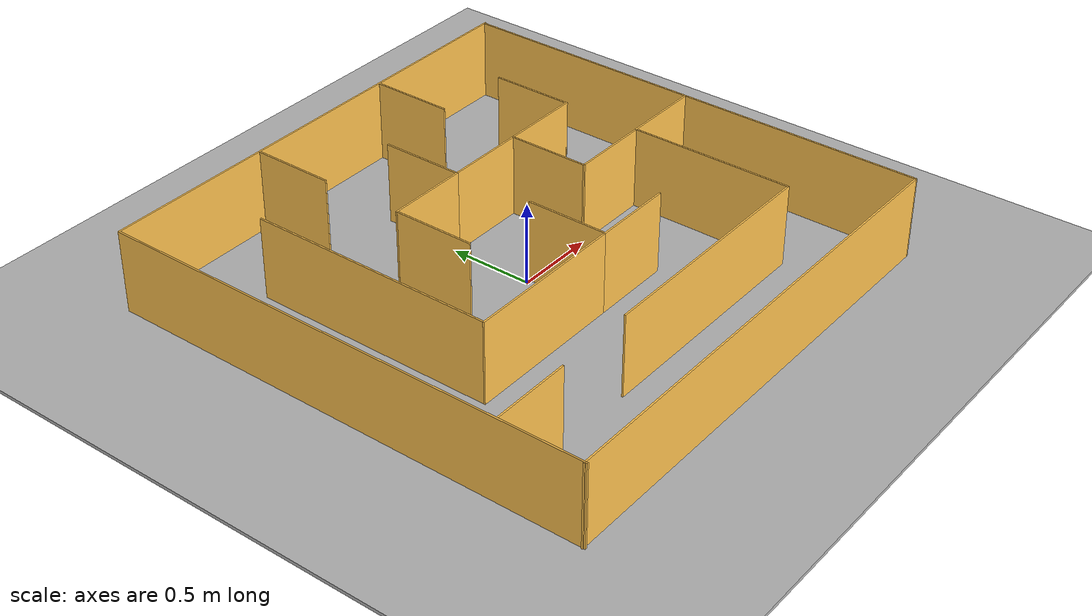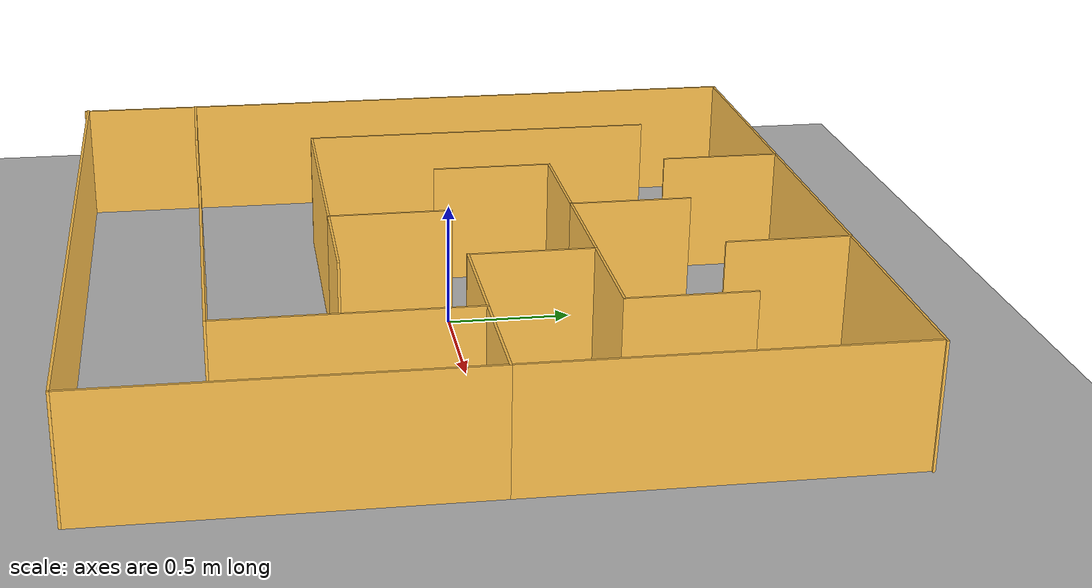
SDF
<?xml version="1.0"?>
<sdf version="1.8">
  <world name="maze_world">
    <physics type="ode">
      <real_time_update_rate>1000.0</real_time_update_rate>
      <max_step_size>0.001</max_step_size>
      <real_time_factor>1</real_time_factor>
      <ode>
        <solver>
          <type>quick</type>
          <iters>150</iters>
          <precon_iters>0</precon_iters>
          <sor>1.4</sor>
          <use_dynamic_moi_rescaling>1</use_dynamic_moi_rescaling>
        </solver>
        <constraints>
          <cfm>0.0</cfm>
          <erp>0.2</erp>
          <contact_surface_layer>0.001</contact_surface_layer>
          <contact_max_correcting_vel>0.5</contact_max_correcting_vel>
        </constraints>
      </ode>
    </physics>
    <plugin
      filename="gz-sim-physics-system"
      name="gz::sim::systems::Physics">
    </plugin>
    <plugin
      filename="gz-sim-user-commands-system"
      name="gz::sim::systems::UserCommands">
    </plugin>
    <plugin
      filename="gz-sim-scene-broadcaster-system"
      name="gz::sim::systems::SceneBroadcaster">
    </plugin>
    <plugin
      filename="gz-sim-sensors-system"
      name="gz::sim::systems::Sensors">
      <render_engine>ogre2</render_engine>
    </plugin>
    <plugin
      filename="gz-sim-imu-system"
      name="gz::sim::systems::Imu">
    </plugin>

    <model name="ground">
      <static>true</static>
      <pose>0 0 -0.01 0 0 0</pose>
      <link name="ground_link">
       <collision name="ground_collision">
        <geometry><box><size>50 50 0.02</size></box></geometry>
       </collision>
       <visual name="ground_visual">
        <geometry><box><size>50 50 0.02</size></box></geometry>
       </visual>
      </link>
    </model>

    <light name="sun" type="directional">
      <pose>0 0 10 0 0 0</pose>
      <direction>-0.5 0.5 -1</direction>
    </light>

    <include>
      <uri>model://maze_world</uri>
      <name>maze</name>
      <pose>0 0 0 0 0 0</pose>
      <static>true</static>
    </include>
  </world>
</sdf>

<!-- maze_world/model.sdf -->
<sdf version='1.7'>
  <model name='maze_world'>
    <pose>-0.030549 0.041679 0 0 -0 0</pose>
    <link name='Wall_0'>
      <collision name='Wall_0_Collision'>
        <geometry>
          <box>
            <size>0.5 0.01 0.5</size>
          </box>
        </geometry>
        <pose>0 0 0.25 0 -0 0</pose>
      </collision>
      <visual name='Wall_0_Visual'>
        <pose>0 0 0.25 0 -0 0</pose>
        <geometry>
          <box>
            <size>0.5 0.01 0.5</size>
          </box>
        </geometry>
        <material>
          <script>
            <uri>file://media/materials/scripts/gazebo.material</uri>
            <name>Gazebo/Grey</name>
          </script>
          <ambient>1 0.764706 0.305882 1</ambient>
        </material>
        <meta>
          <layer>0</layer>
        </meta>
      </visual>
      <pose>1.24555 0.005321 0 0 -0 3.14159</pose>
    </link>
    <link name='Wall_10'>
      <collision name='Wall_10_Collision'>
        <geometry>
          <box>
            <size>0.5 0.01 0.5</size>
          </box>
        </geometry>
        <pose>0 0 0.25 0 -0 0</pose>
      </collision>
      <visual name='Wall_10_Visual'>
        <pose>0 0 0.25 0 -0 0</pose>
        <geometry>
          <box>
            <size>0.5 0.01 0.5</size>
          </box>
        </geometry>
        <material>
          <script>
            <uri>file://media/materials/scripts/gazebo.material</uri>
            <name>Gazebo/Grey</name>
          </script>
          <ambient>1 0.764706 0.305882 1</ambient>
        </material>
        <meta>
          <layer>0</layer>
        </meta>
      </visual>
      <pose>0.755549 0.005321 0 0 -0 3.14159</pose>
    </link>
    <link name='Wall_12'>
      <collision name='Wall_12_Collision'>
        <geometry>
          <box>
            <size>0.5 0.01 0.5</size>
          </box>
        </geometry>
        <pose>0 0 0.25 0 -0 0</pose>
      </collision>
      <visual name='Wall_12_Visual'>
        <pose>0 0 0.25 0 -0 0</pose>
        <geometry>
          <box>
            <size>0.5 0.01 0.5</size>
          </box>
        </geometry>
        <material>
          <script>
            <uri>file://media/materials/scripts/gazebo.material</uri>
            <name>Gazebo/Grey</name>
          </script>
          <ambient>1 0.764706 0.305882 1</ambient>
        </material>
        <meta>
          <layer>0</layer>
        </meta>
      </visual>
      <pose>0.510549 0.250321 0 0 -0 1.5708</pose>
    </link>
    <link name='Wall_14'>
      <collision name='Wall_14_Collision'>
        <geometry>
          <box>
            <size>0.5 0.01 0.5</size>
          </box>
        </geometry>
        <pose>0 0 0.25 0 -0 0</pose>
      </collision>
      <visual name='Wall_14_Visual'>
        <pose>0 0 0.25 0 -0 0</pose>
        <geometry>
          <box>
            <size>0.5 0.01 0.5</size>
          </box>
        </geometry>
        <material>
          <script>
            <uri>file://media/materials/scripts/gazebo.material</uri>
            <name>Gazebo/Grey</name>
          </script>
          <ambient>1 0.764706 0.305882 1</ambient>
        </material>
        <meta>
          <layer>0</layer>
        </meta>
      </visual>
      <pose>0.755549 0.495321 0 0 -0 0</pose>
    </link>
    <link name='Wall_16'>
      <collision name='Wall_16_Collision'>
        <geometry>
          <box>
            <size>0.5 0.01 0.5</size>
          </box>
        </geometry>
        <pose>0 0 0.25 0 -0 0</pose>
      </collision>
      <visual name='Wall_16_Visual'>
        <pose>0 0 0.25 0 -0 0</pose>
        <geometry>
          <box>
            <size>0.5 0.01 0.5</size>
          </box>
        </geometry>
        <material>
          <script>
            <uri>file://media/materials/scripts/gazebo.material</uri>
            <name>Gazebo/Grey</name>
          </script>
          <ambient>1 0.764706 0.305882 1</ambient>
        </material>
        <meta>
          <layer>0</layer>
        </meta>
      </visual>
      <pose>0.265549 0.495321 0 0 -0 3.14159</pose>
    </link>
    <link name='Wall_18'>
      <collision name='Wall_18_Collision'>
        <geometry>
          <box>
            <size>0.5 0.01 0.5</size>
          </box>
        </geometry>
        <pose>0 0 0.25 0 -0 0</pose>
      </collision>
      <visual name='Wall_18_Visual'>
        <pose>0 0 0.25 0 -0 0</pose>
        <geometry>
          <box>
            <size>0.5 0.01 0.5</size>
          </box>
        </geometry>
        <material>
          <script>
            <uri>file://media/materials/scripts/gazebo.material</uri>
            <name>Gazebo/Grey</name>
          </script>
          <ambient>1 0.764706 0.305882 1</ambient>
        </material>
        <meta>
          <layer>0</layer>
        </meta>
      </visual>
      <pose>-0.224451 0.495321 0 0 -0 3.14159</pose>
    </link>
    <link name='Wall_2'>
      <collision name='Wall_2_Collision'>
        <geometry>
          <box>
            <size>1 0.01 0.5</size>
          </box>
        </geometry>
        <pose>0 0 0.25 0 -0 0</pose>
      </collision>
      <visual name='Wall_2_Visual'>
        <pose>0 0 0.25 0 -0 0</pose>
        <geometry>
          <box>
            <size>1 0.01 0.5</size>
          </box>
        </geometry>
        <material>
          <script>
            <uri>file://media/materials/scripts/gazebo.material</uri>
            <name>Gazebo/Grey</name>
          </script>
          <ambient>1 0.764706 0.305882 1</ambient>
        </material>
        <meta>
          <layer>0</layer>
        </meta>
      </visual>
      <pose>1.00055 -0.489679 0 0 -0 -1.5708</pose>
    </link>
    <link name='Wall_20'>
      <collision name='Wall_20_Collision'>
        <geometry>
          <box>
            <size>0.5 0.01 0.5</size>
          </box>
        </geometry>
        <pose>0 0 0.25 0 -0 0</pose>
      </collision>
      <visual name='Wall_20_Visual'>
        <pose>0 0 0.25 0 -0 0</pose>
        <geometry>
          <box>
            <size>0.5 0.01 0.5</size>
          </box>
        </geometry>
        <material>
          <script>
            <uri>file://media/materials/scripts/gazebo.material</uri>
            <name>Gazebo/Grey</name>
          </script>
          <ambient>1 0.764706 0.305882 1</ambient>
        </material>
        <meta>
          <layer>0</layer>
        </meta>
      </visual>
      <pose>-0.469451 0.250321 0 0 -0 -1.5708</pose>
    </link>
    <link name='Wall_22'>
      <collision name='Wall_22_Collision'>
        <geometry>
          <box>
            <size>0.5 0.01 0.5</size>
          </box>
        </geometry>
        <pose>0 0 0.25 0 -0 0</pose>
      </collision>
      <visual name='Wall_22_Visual'>
        <pose>0 0 0.25 0 -0 0</pose>
        <geometry>
          <box>
            <size>0.5 0.01 0.5</size>
          </box>
        </geometry>
        <material>
          <script>
            <uri>file://media/materials/scripts/gazebo.material</uri>
            <name>Gazebo/Grey</name>
          </script>
          <ambient>1 0.764706 0.305882 1</ambient>
        </material>
        <meta>
          <layer>0</layer>
        </meta>
      </visual>
      <pose>0.020549 0.740321 0 0 -0 1.5708</pose>
    </link>
    <link name='Wall_24'>
      <collision name='Wall_24_Collision'>
        <geometry>
          <box>
            <size>0.5 0.01 0.5</size>
          </box>
        </geometry>
        <pose>0 0 0.25 0 -0 0</pose>
      </collision>
      <visual name='Wall_24_Visual'>
        <pose>0 0 0.25 0 -0 0</pose>
        <geometry>
          <box>
            <size>0.5 0.01 0.5</size>
          </box>
        </geometry>
        <material>
          <script>
            <uri>file://media/materials/scripts/gazebo.material</uri>
            <name>Gazebo/Grey</name>
          </script>
          <ambient>1 0.764706 0.305882 1</ambient>
        </material>
        <meta>
          <layer>0</layer>
        </meta>
      </visual>
      <pose>1.00055 0.740321 0 0 -0 1.5708</pose>
    </link>
    <link name='Wall_26'>
      <collision name='Wall_26_Collision'>
        <geometry>
          <box>
            <size>0.5 0.01 0.5</size>
          </box>
        </geometry>
        <pose>0 0 0.25 0 -0 0</pose>
      </collision>
      <visual name='Wall_26_Visual'>
        <pose>0 0 0.25 0 -0 0</pose>
        <geometry>
          <box>
            <size>0.5 0.01 0.5</size>
          </box>
        </geometry>
        <material>
          <script>
            <uri>file://media/materials/scripts/gazebo.material</uri>
            <name>Gazebo/Grey</name>
          </script>
          <ambient>1 0.764706 0.305882 1</ambient>
        </material>
        <meta>
          <layer>0</layer>
        </meta>
      </visual>
      <pose>0.515549 1.24865 0 0 -0 -1.5708</pose>
    </link>
    <link name='Wall_28'>
      <collision name='Wall_28_Collision'>
        <geometry>
          <box>
            <size>0.5 0.01 0.5</size>
          </box>
        </geometry>
        <pose>0 0 0.25 0 -0 0</pose>
      </collision>
      <visual name='Wall_28_Visual'>
        <pose>0 0 0.25 0 -0 0</pose>
        <geometry>
          <box>
            <size>0.5 0.01 0.5</size>
          </box>
        </geometry>
        <material>
          <script>
            <uri>file://media/materials/scripts/gazebo.material</uri>
            <name>Gazebo/Grey</name>
          </script>
          <ambient>1 0.764706 0.305882 1</ambient>
        </material>
        <meta>
          <layer>0</layer>
        </meta>
      </visual>
      <pose>-0.471451 1.2488 0 0 -0 -1.5708</pose>
    </link>
    <link name='Wall_36'>
      <collision name='Wall_36_Collision'>
        <geometry>
          <box>
            <size>1.5 0.01 0.5</size>
          </box>
        </geometry>
        <pose>0 0 0.25 0 -0 0</pose>
      </collision>
      <visual name='Wall_36_Visual'>
        <pose>0 0 0.25 0 -0 0</pose>
        <geometry>
          <box>
            <size>1.5 0.01 0.5</size>
          </box>
        </geometry>
        <material>
          <script>
            <uri>file://media/materials/scripts/gazebo.material</uri>
            <name>Gazebo/Grey</name>
          </script>
          <ambient>1 0.764706 0.305882 1</ambient>
        </material>
        <meta>
          <layer>0</layer>
        </meta>
      </visual>
      <pose>-0.955451 0.261321 0 0 -0 1.5708</pose>
    </link>
    <link name='Wall_38'>
      <collision name='Wall_38_Collision'>
        <geometry>
          <box>
            <size>1 0.01 0.5</size>
          </box>
        </geometry>
        <pose>0 0 0.25 0 -0 0</pose>
      </collision>
      <visual name='Wall_38_Visual'>
        <pose>0 0 0.25 0 -0 0</pose>
        <geometry>
          <box>
            <size>1 0.01 0.5</size>
          </box>
        </geometry>
        <material>
          <script>
            <uri>file://media/materials/scripts/gazebo.material</uri>
            <name>Gazebo/Grey</name>
          </script>
          <ambient>1 0.764706 0.305882 1</ambient>
        </material>
        <meta>
          <layer>0</layer>
        </meta>
      </visual>
      <pose>-0.460451 -0.483679 0 0 -0 0</pose>
    </link>
    <link name='Wall_40'>
      <collision name='Wall_40_Collision'>
        <geometry>
          <box>
            <size>0.5 0.01 0.5</size>
          </box>
        </geometry>
        <pose>0 0 0.25 0 -0 0</pose>
      </collision>
      <visual name='Wall_40_Visual'>
        <pose>0 0 0.25 0 -0 0</pose>
        <geometry>
          <box>
            <size>0.5 0.01 0.5</size>
          </box>
        </geometry>
        <material>
          <script>
            <uri>file://media/materials/scripts/gazebo.material</uri>
            <name>Gazebo/Grey</name>
          </script>
          <ambient>1 0.764706 0.305882 1</ambient>
        </material>
        <meta>
          <layer>0</layer>
        </meta>
      </visual>
      <pose>0.279549 -0.483679 0 0 -0 0</pose>
    </link>
    <link name='Wall_42'>
      <collision name='Wall_42_Collision'>
        <geometry>
          <box>
            <size>0.5 0.01 0.5</size>
          </box>
        </geometry>
        <pose>0 0 0.25 0 -0 0</pose>
      </collision>
      <visual name='Wall_42_Visual'>
        <pose>0 0 0.25 0 -0 0</pose>
        <geometry>
          <box>
            <size>0.5 0.01 0.5</size>
          </box>
        </geometry>
        <material>
          <script>
            <uri>file://media/materials/scripts/gazebo.material</uri>
            <name>Gazebo/Grey</name>
          </script>
          <ambient>1 0.764706 0.305882 1</ambient>
        </material>
        <meta>
          <layer>0</layer>
        </meta>
      </visual>
      <pose>0.034549 -0.238679 0 0 -0 1.5708</pose>
    </link>
    <link name='Wall_44'>
      <collision name='Wall_44_Collision'>
        <geometry>
          <box>
            <size>1.5 0.01 0.5</size>
          </box>
        </geometry>
        <pose>0 0 0.25 0 -0 0</pose>
      </collision>
      <visual name='Wall_44_Visual'>
        <pose>0 0 0.25 0 -0 0</pose>
        <geometry>
          <box>
            <size>1.5 0.01 0.5</size>
          </box>
        </geometry>
        <material>
          <script>
            <uri>file://media/materials/scripts/gazebo.material</uri>
            <name>Gazebo/Grey</name>
          </script>
          <ambient>1 0.764706 0.305882 1</ambient>
        </material>
        <meta>
          <layer>0</layer>
        </meta>
      </visual>
      <pose>1.49055 -0.739679 0 0 -0 -1.5708</pose>
    </link>
    <link name='Wall_46'>
      <collision name='Wall_46_Collision'>
        <geometry>
          <box>
            <size>1.5 0.01 0.5</size>
          </box>
        </geometry>
        <pose>0 0 0.25 0 -0 0</pose>
      </collision>
      <visual name='Wall_46_Visual'>
        <pose>0 0 0.25 0 -0 0</pose>
        <geometry>
          <box>
            <size>1.5 0.01 0.5</size>
          </box>
        </geometry>
        <material>
          <script>
            <uri>file://media/materials/scripts/gazebo.material</uri>
            <name>Gazebo/Grey</name>
          </script>
          <ambient>1 0.764706 0.305882 1</ambient>
        </material>
        <meta>
          <layer>0</layer>
        </meta>
      </visual>
      <pose>1.49055 0.750321 0 0 -0 1.5708</pose>
    </link>
    <link name='Wall_51'>
      <collision name='Wall_51_Collision'>
        <geometry>
          <box>
            <size>3 0.01 0.5</size>
          </box>
        </geometry>
        <pose>0 0 0.25 0 -0 0</pose>
      </collision>
      <visual name='Wall_51_Visual'>
        <pose>0 0 0.25 0 -0 0</pose>
        <geometry>
          <box>
            <size>3 0.01 0.5</size>
          </box>
        </geometry>
        <material>
          <script>
            <uri>file://media/materials/scripts/gazebo.material</uri>
            <name>Gazebo/Grey</name>
          </script>
          <ambient>1 0.764706 0.305882 1</ambient>
        </material>
        <meta>
          <layer>0</layer>
        </meta>
      </visual>
      <pose>0.003593 1.49474 0 0 -0 0</pose>
    </link>
    <link name='Wall_53'>
      <collision name='Wall_53_Collision'>
        <geometry>
          <box>
            <size>3 0.01 0.5</size>
          </box>
        </geometry>
        <pose>0 0 0.25 0 -0 0</pose>
      </collision>
      <visual name='Wall_53_Visual'>
        <pose>0 0 0.25 0 -0 0</pose>
        <geometry>
          <box>
            <size>3 0.01 0.5</size>
          </box>
        </geometry>
        <material>
          <script>
            <uri>file://media/materials/scripts/gazebo.material</uri>
            <name>Gazebo/Grey</name>
          </script>
          <ambient>1 0.764706 0.305882 1</ambient>
        </material>
        <meta>
          <layer>0</layer>
        </meta>
      </visual>
      <pose>-1.4928 -0.000321 0 0 -0 1.5708</pose>
    </link>
    <link name='Wall_57'>
      <collision name='Wall_57_Collision'>
        <geometry>
          <box>
            <size>3 0.01 0.5</size>
          </box>
        </geometry>
        <pose>0 0 0.25 0 -0 0</pose>
      </collision>
      <visual name='Wall_57_Visual'>
        <pose>0 0 0.25 0 -0 0</pose>
        <geometry>
          <box>
            <size>3 0.01 0.5</size>
          </box>
        </geometry>
        <material>
          <script>
            <uri>file://media/materials/scripts/gazebo.material</uri>
            <name>Gazebo/Grey</name>
          </script>
          <ambient>1 0.764706 0.305882 1</ambient>
        </material>
        <meta>
          <layer>0</layer>
        </meta>
      </visual>
      <pose>-0.003593 -1.4846 0 0 -0 0</pose>
    </link>
    <link name='Wall_59'>
      <collision name='Wall_59_Collision'>
        <geometry>
          <box>
            <size>0.5 0.01 0.5</size>
          </box>
        </geometry>
        <pose>0 0 0.25 0 -0 0</pose>
      </collision>
      <visual name='Wall_59_Visual'>
        <pose>0 0 0.25 0 -0 0</pose>
        <geometry>
          <box>
            <size>0.5 0.01 0.5</size>
          </box>
        </geometry>
        <material>
          <script>
            <uri>file://media/materials/scripts/gazebo.material</uri>
            <name>Gazebo/Grey</name>
          </script>
          <ambient>1 0.764706 0.305882 1</ambient>
        </material>
        <meta>
          <layer>0</layer>
        </meta>
      </visual>
      <pose>-1.24682 -0.991679 0 0 -0 0</pose>
    </link>
    <link name='Wall_8'>
      <collision name='Wall_8_Collision'>
        <geometry>
          <box>
            <size>1.5 0.01 0.5</size>
          </box>
        </geometry>
        <pose>0 0 0.25 0 -0 0</pose>
      </collision>
      <visual name='Wall_8_Visual'>
        <pose>0 0 0.25 0 -0 0</pose>
        <geometry>
          <box>
            <size>1.5 0.01 0.5</size>
          </box>
        </geometry>
        <material>
          <script>
            <uri>file://media/materials/scripts/gazebo.material</uri>
            <name>Gazebo/Grey</name>
          </script>
          <ambient>1 0.764706 0.305882 1</ambient>
        </material>
        <meta>
          <layer>0</layer>
        </meta>
      </visual>
      <pose>0.255549 -0.984679 0 0 -0 3.14159</pose>
    </link>
    <static>1</static>
  </model>
</sdf>
